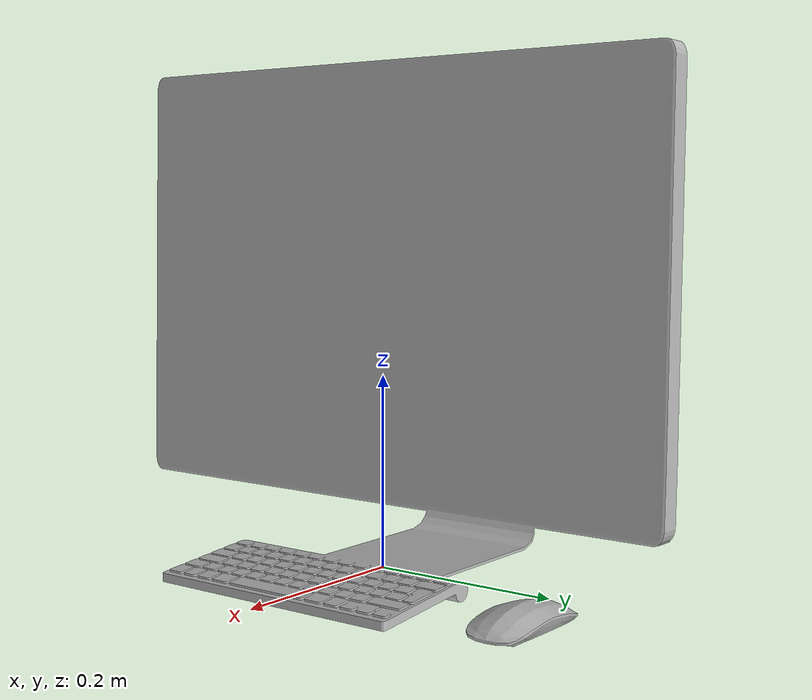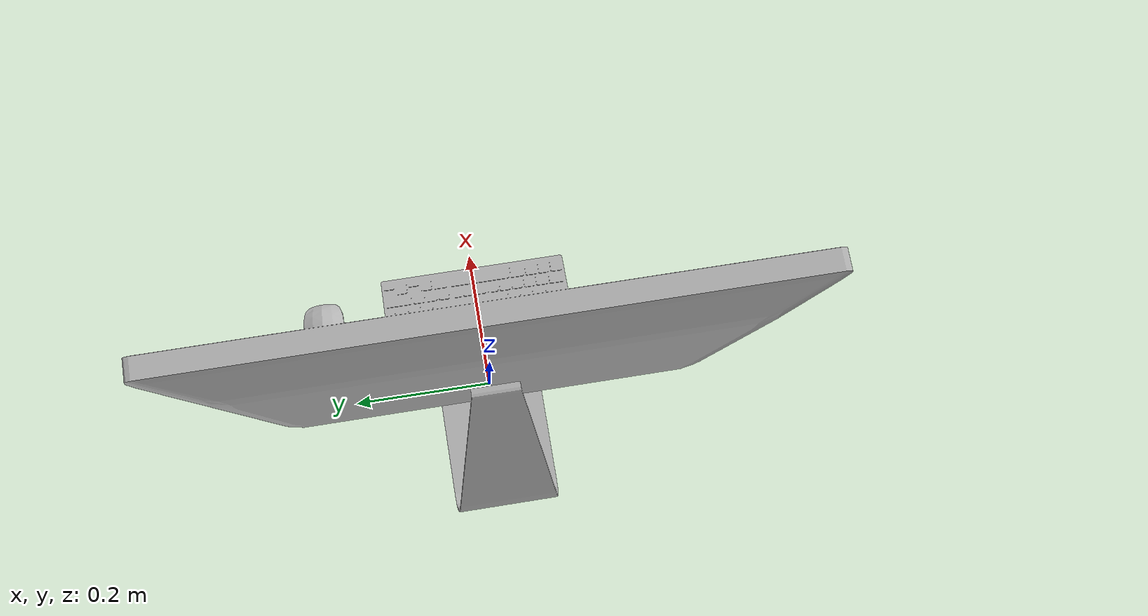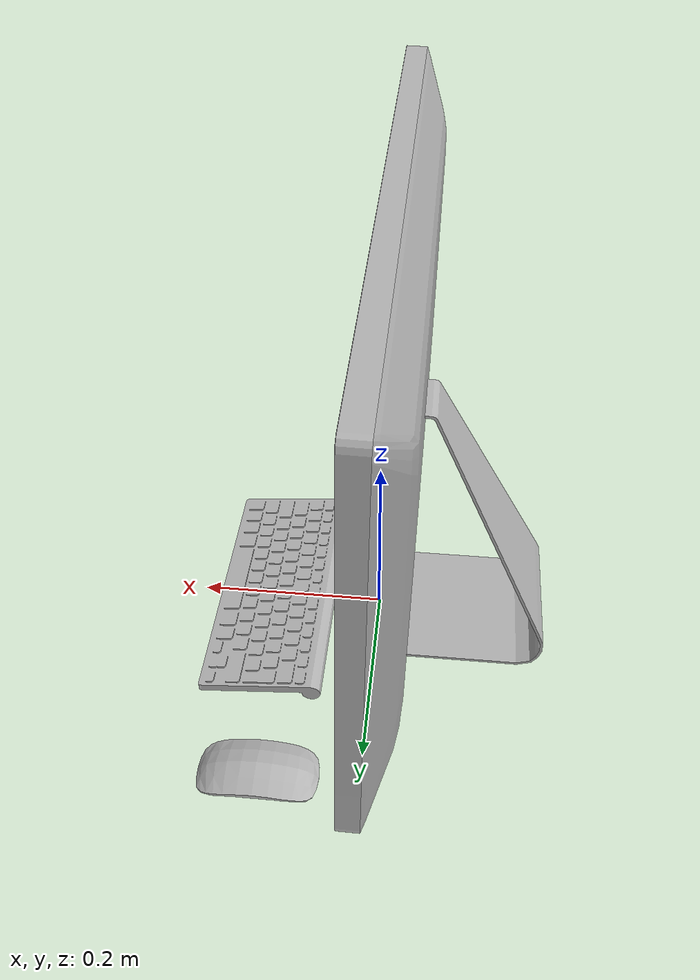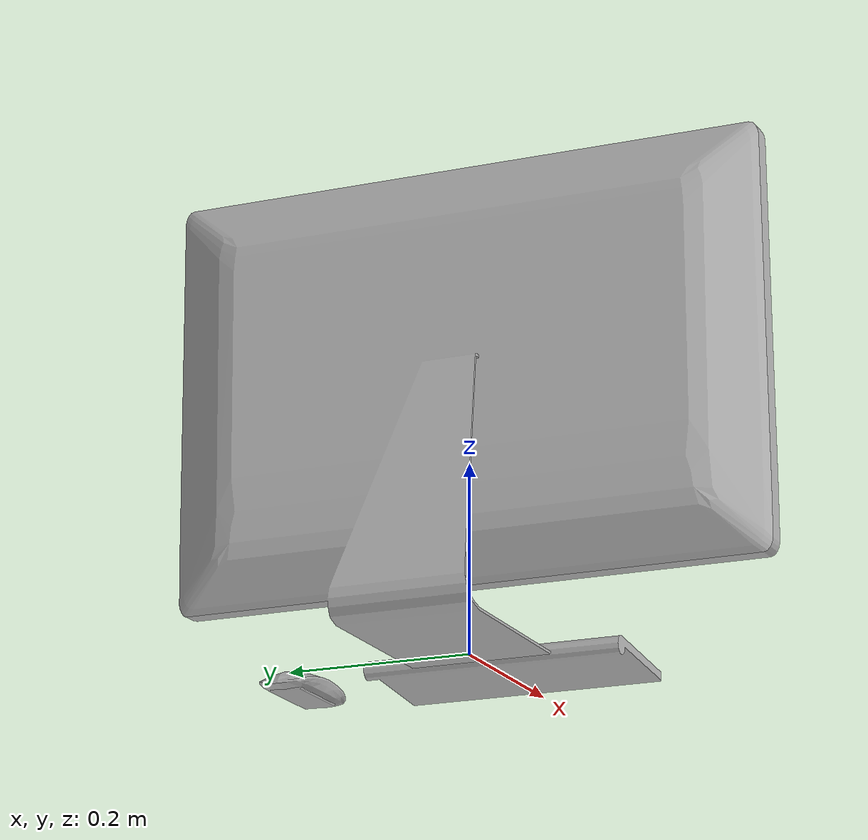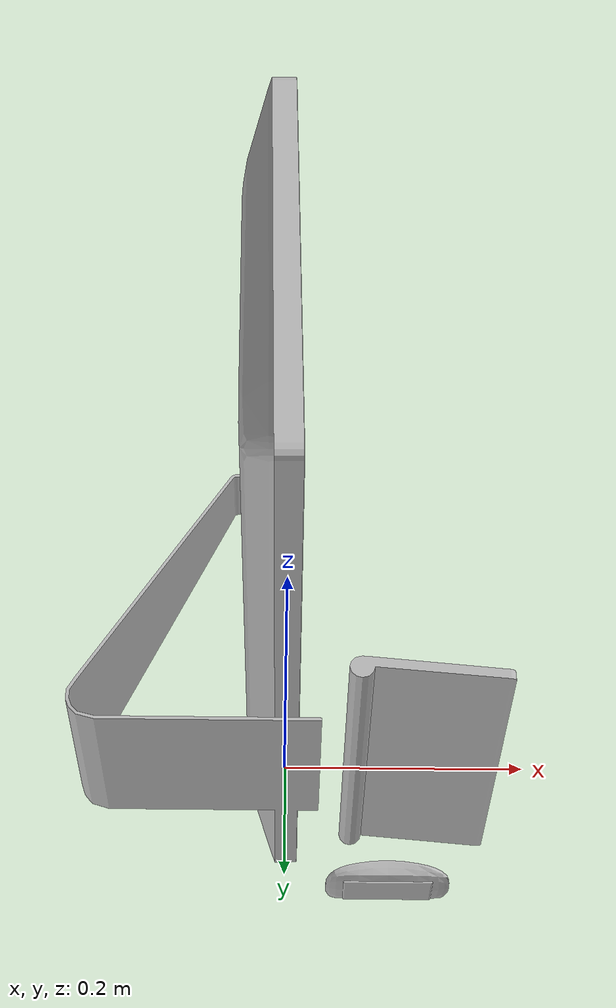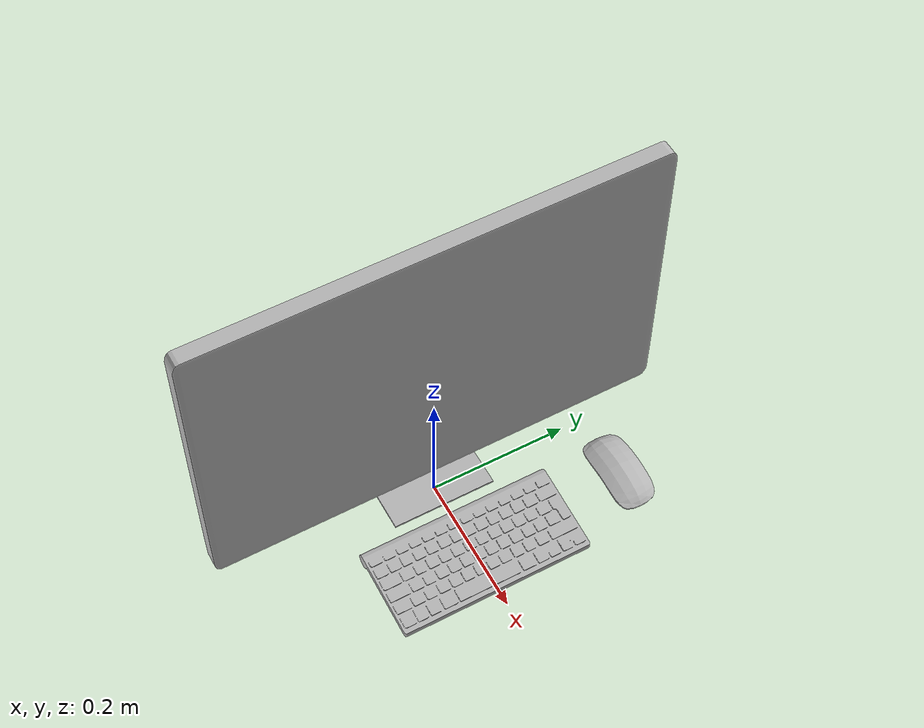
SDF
<?xml version='1.0'?>
<sdf version='1.4'>
  <model name='189'>
    <pose>0 0 0 0 0 0</pose>
    <static>true</static>
    <link name='link'>
      <collision name='collision'>
        <pose>0 0 0 0 0 0</pose>
        <geometry>
          <box>
            <size>0.359507 0.6495 2</size>
          </box>
        </geometry>
      </collision>
      <visual name='visual'>
        <pose>0 0 0 0 0 0</pose>
        <geometry>
          <mesh><uri>model://189/189.dae</uri></mesh>
        </geometry>
      </visual>
    </link>
  </model>
</sdf>
